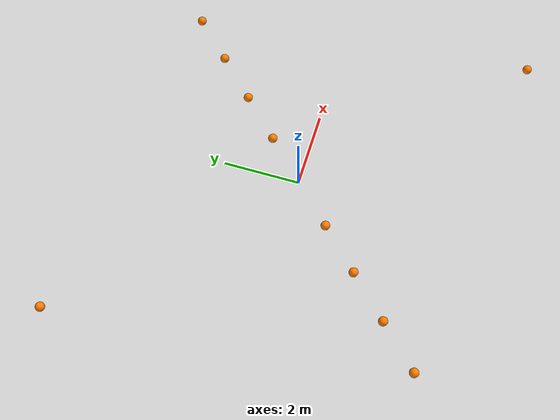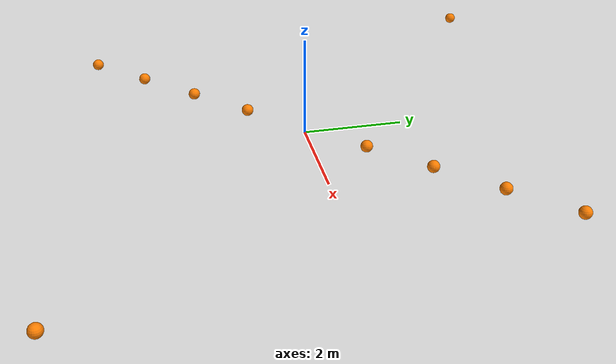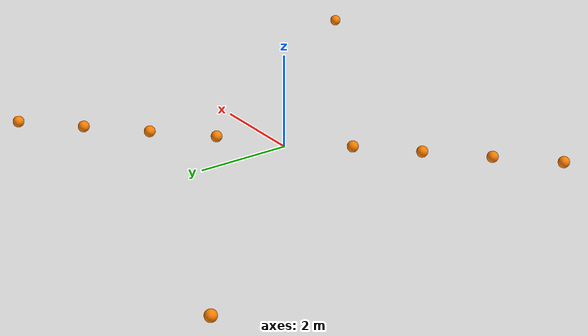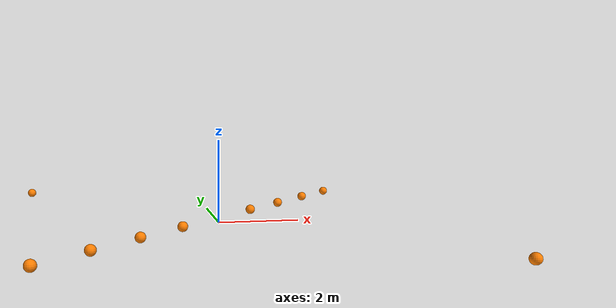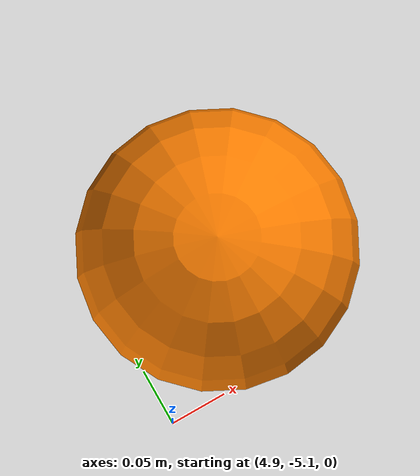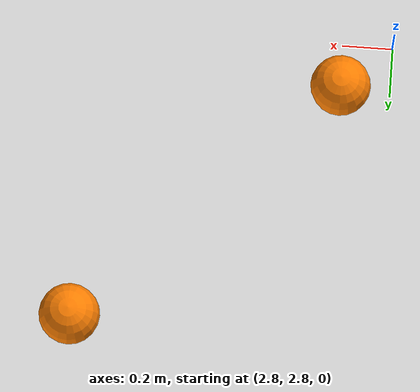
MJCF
<mujoco model="balls_clutter">
    <worldbody>
        <body name="extra_ball_0" pos="1.0 1.0 0.12"><joint type="free"/><geom type="sphere" size="0.12" rgba="1 0.5 0 1" friction="1 .05 .01"/></body>
        <body name="extra_ball_1" pos="2.0 2.0 0.12"><joint type="free"/><geom type="sphere" size="0.12" rgba="1 0.5 0 1" friction="1 .05 .01"/></body>
        <body name="extra_ball_2" pos="3.0 3.0 0.12"><joint type="free"/><geom type="sphere" size="0.12" rgba="1 0.5 0 1" friction="1 .05 .01"/></body>
        <body name="extra_ball_3" pos="4.0 4.0 0.12"><joint type="free"/><geom type="sphere" size="0.12" rgba="1 0.5 0 1" friction="1 .05 .01"/></body>
        <body name="extra_ball_4" pos="-1.0 -1.0 0.12"><joint type="free"/><geom type="sphere" size="0.12" rgba="1 0.5 0 1" friction="1 .05 .01"/></body>
        <body name="extra_ball_5" pos="-2.0 -2.0 0.12"><joint type="free"/><geom type="sphere" size="0.12" rgba="1 0.5 0 1" friction="1 .05 .01"/></body>
        <body name="extra_ball_6" pos="-3.0 -3.0 0.12"><joint type="free"/><geom type="sphere" size="0.12" rgba="1 0.5 0 1" friction="1 .05 .01"/></body>
        <body name="extra_ball_7" pos="-4.0 -4.0 0.12"><joint type="free"/><geom type="sphere" size="0.12" rgba="1 0.5 0 1" friction="1 .05 .01"/></body>
        <body name="extra_ball_8" pos="5.0 -5.0 0.12"><joint type="free"/><geom type="sphere" size="0.12" rgba="1 0.5 0 1" friction="1 .05 .01"/></body>
        <body name="extra_ball_9" pos="-5.0 5.0 0.12"><joint type="free"/><geom type="sphere" size="0.12" rgba="1 0.5 0 1" friction="1 .05 .01"/></body>
    </worldbody>
</mujoco>
